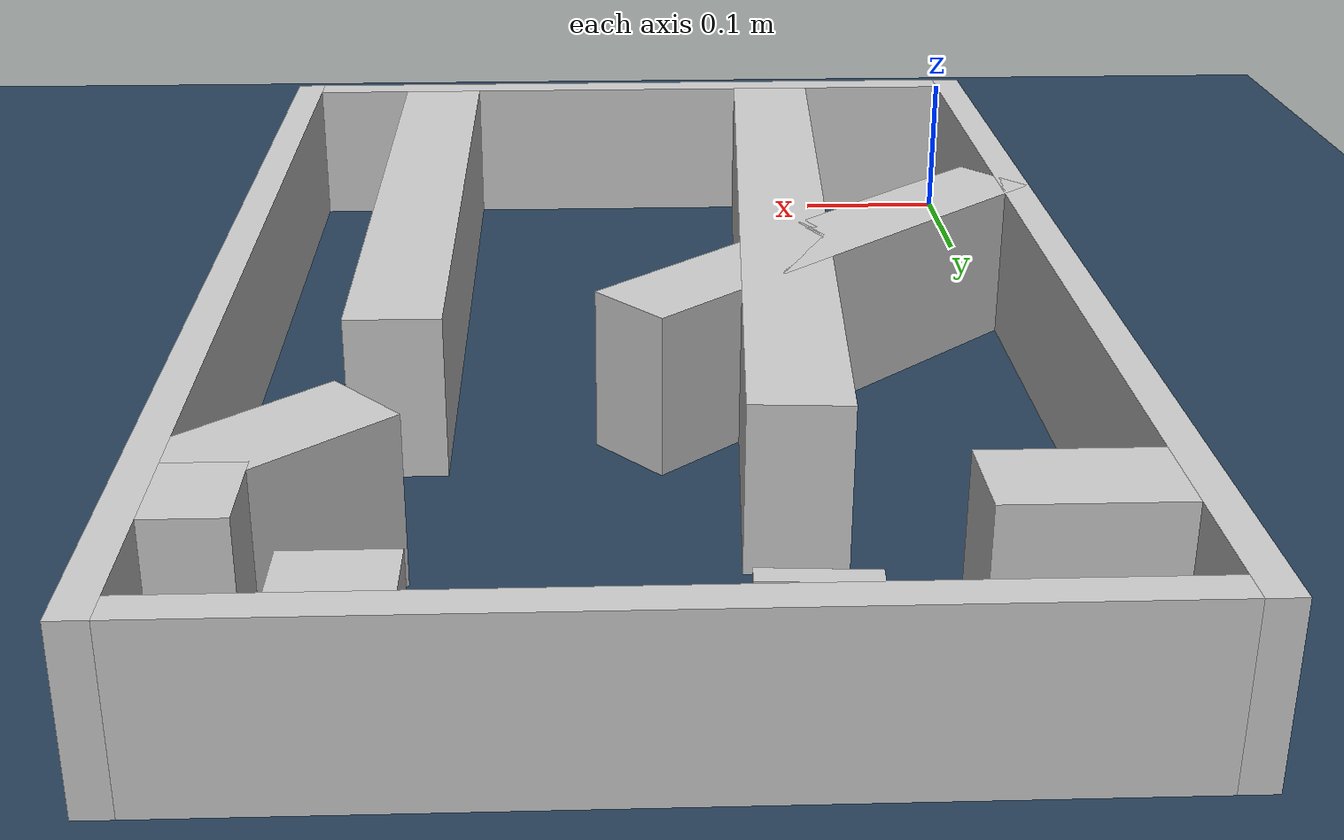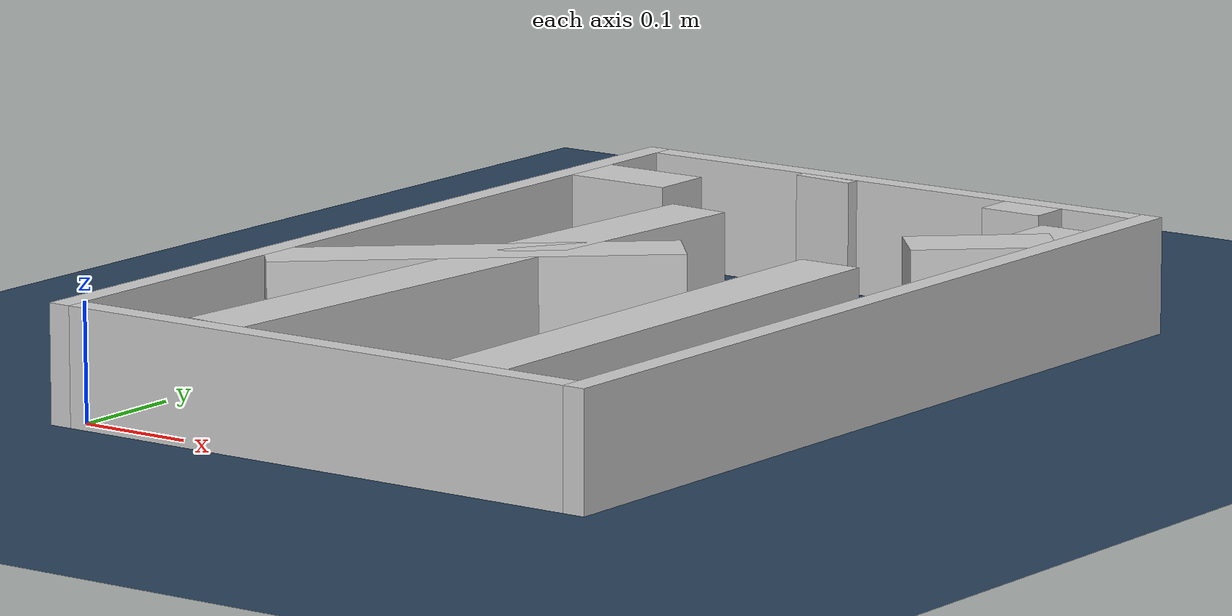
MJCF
<?xml version="1.0" ?>
<mujoco model="generated_real_template">
  <compiler angle="degree"/>
  <option timestep="0.002" integrator="implicitfast" iterations="100" cone="elliptic"/>
  <default>
    <geom density="1"/>
  </default>
  <asset>
    <texture builtin="gradient" height="3072" rgb1="0.3 0.5 0.7" rgb2="0 0 0" type="skybox" width="512"/>
    <texture builtin="checker" height="300" mark="edge" markrgb="0.8 0.8 0.8" name="groundplane" rgb1="0.2 0.3 0.4" rgb2="0.1 0.2 0.3" type="2d" width="300"/>
    <material name="groundplane" reflectance="0.2" texrepeat="5 5" texture="groundplane" texuniform="true"/>
  </asset>
  <worldbody>
    <light dir="0 0 -1" directional="true" pos="0 0 1.5"/>
    <geom name="floor" type="plane" condim="4" friction="0.5 0.005 0.001" material="groundplane" size="0 0 0.05"/>
    <body name="walls">
      <geom name="wall_boundary_left" type="box" condim="4" friction="1.0 0.005 0.0001" rgba="0.8 0.8 0.8 1" pos="-0.010000 0.387500 0.050000" euler="0 0 0.000000" size="0.010000 0.407500 0.050000"/>
      <geom name="wall_boundary_right" type="box" condim="4" friction="1.0 0.005 0.0001" rgba="0.8 0.8 0.8 1" pos="0.500000 0.387500 0.050000" euler="0 0 0.000000" size="0.010000 0.407500 0.050000"/>
      <geom name="wall_boundary_bottom" type="box" condim="4" friction="1.0 0.005 0.0001" rgba="0.8 0.8 0.8 1" pos="0.245000 -0.010000 0.050000" euler="0 0 0.000000" size="0.245000 0.010000 0.050000"/>
      <geom name="wall_boundary_top" type="box" condim="4" friction="1.0 0.005 0.0001" rgba="0.8 0.8 0.8 1" pos="0.245000 0.785000 0.050000" euler="0 0 0.000000" size="0.245000 0.010000 0.050000"/>
      <geom name="wall_inner_1_1" type="box" condim="4" friction="1.0 0.005 0.0001" rgba="0.8 0.8 0.8 1" pos="0.393837 0.237209 0.050000" euler="0 0 90.000000" size="0.237209 0.028500 0.050000"/>
      <geom name="wall_inner_1_2" type="box" condim="4" friction="1.0 0.005 0.0001" rgba="0.8 0.8 0.8 1" pos="0.393837 0.757143 0.050000" euler="0 0 90.000000" size="0.017857 0.028500 0.050000"/>
      <geom name="wall_inner_2_1" type="box" condim="4" friction="1.0 0.005 0.0001" rgba="0.8 0.8 0.8 1" pos="0.185051 0.769140 0.050000" euler="0 0 -93.789874" size="0.005873 0.028500 0.050000"/>
      <geom name="wall_inner_2_2" type="box" condim="4" friction="1.0 0.005 0.0001" rgba="0.8 0.8 0.8 1" pos="0.153878 0.298560 0.050000" euler="0 0 -93.789874" size="0.299215 0.028500 0.050000"/>
      <geom name="wall_inner_3_1" type="box" condim="4" friction="1.0 0.005 0.0001" rgba="0.8 0.8 0.8 1" pos="0.129570 0.342663 0.050000" euler="0 0 41.424774" size="0.172801 0.028500 0.050000"/>
      <geom name="wall_inner_3_2" type="box" condim="4" friction="1.0 0.005 0.0001" rgba="0.8 0.8 0.8 1" pos="0.443740 0.619882 0.050000" euler="0 0 41.424774" size="0.061695 0.028500 0.050000"/>
      <geom name="wall_inner_4_1" type="box" condim="4" friction="1.0 0.005 0.0001" rgba="0.8 0.8 0.8 1" pos="0.048213 0.679744 0.050000" euler="0 0 0.000000" size="0.048213 0.028500 0.050000"/>
      <geom name="wall_inner_4_2" type="box" condim="4" friction="1.0 0.005 0.0001" rgba="0.8 0.8 0.8 1" pos="0.468441 0.679744 0.050000" euler="0 0 0.000000" size="0.021559 0.028500 0.050000"/>
    </body>
  </worldbody>
</mujoco>
